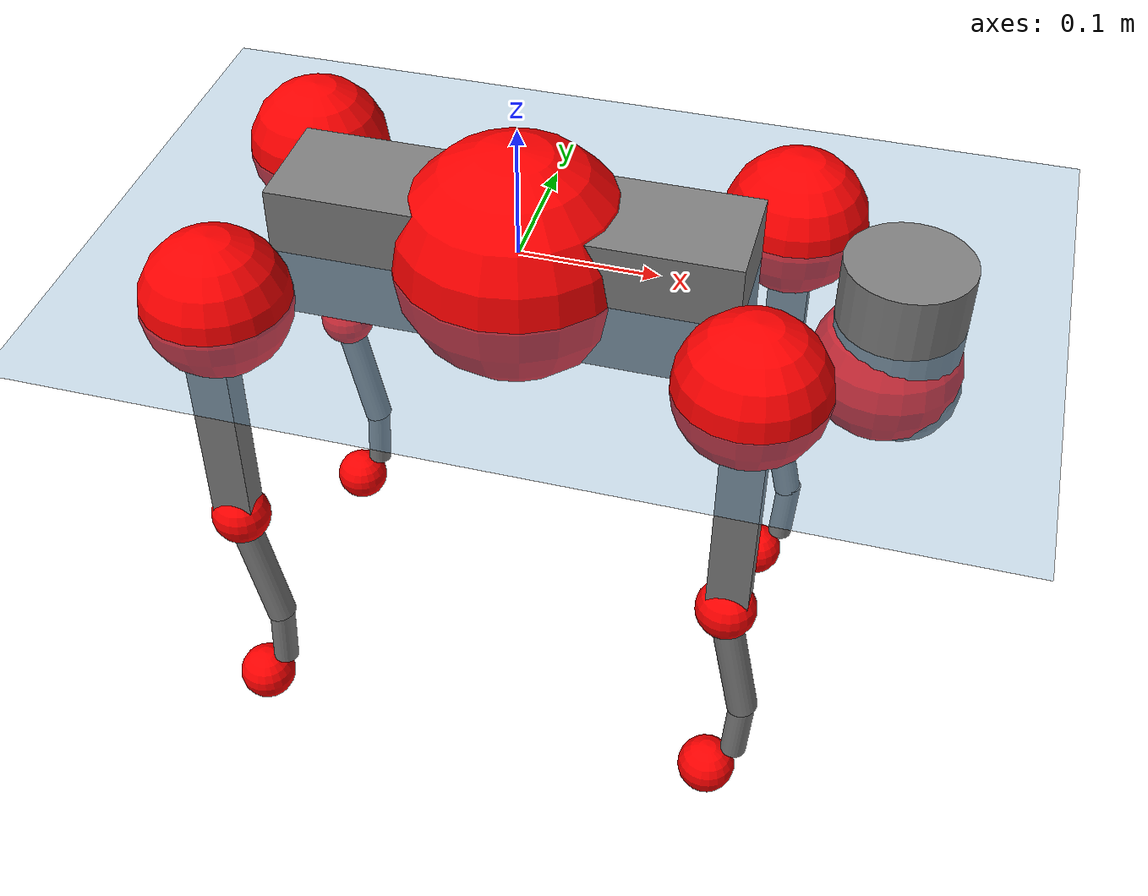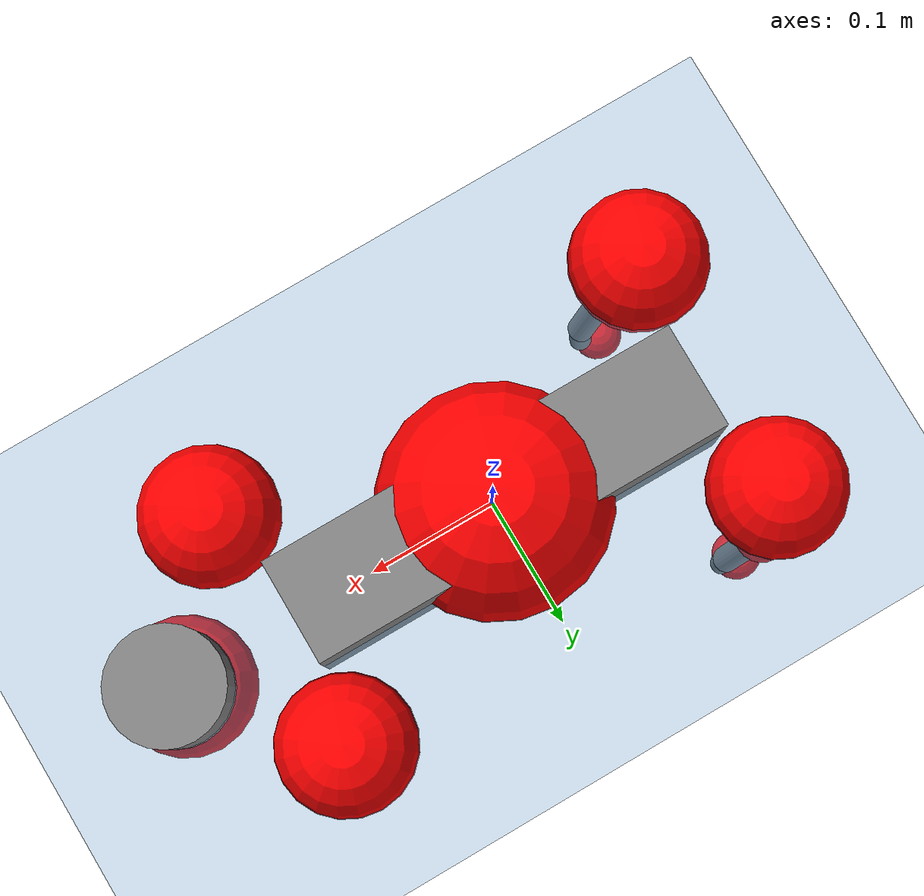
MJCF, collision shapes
<mujoco model="go2">
  <compiler angle="radian" assetdir="assets" balanceinertia="true" inertiafromgeom="false"/>

  <option timestep="0.005" density="1.2" viscosity="2e-05"/>

  <size nkey="1"/>

  <visual>
    <quality shadowsize="8192"/>
    <map shadowclip="0.5"/>
  </visual>

  <default>
    <default class="/">
      <geom contype="0" conaffinity="0" group="1" solref="-1000 -80"/>
      <site size="0.01 0.005 0.005" group="5"/>
      <general forcelimited="true" biastype="affine" gainprm="20" biasprm="0 -20 -0.5"/>
      <default class="go2">
        <joint armature="0.01" damping="0.01" frictionloss="0.2"/>
        <geom condim="1" margin="0.001"/>
        <default class="visual">
          <geom type="mesh" group="2"/>
        </default>
        <default class="collision">
          <geom group="3"/>
          <default class="foot">
            <geom size="0.022 0 0" condim="6" priority="1" friction="0.8 0.02 0.01" solimp="0.015 1 0.022"/>
          </default>
        </default>
        <default class="reward_collision_sphere">
          <geom group="5" rgba="1 0 0 1"/>
        </default>
      </default>
    </default>
  </default>

  <asset>
    <texture type="skybox" colorspace="auto" name="//unnamed_texture_0" builtin="gradient" rgb1="0.95 0.95 0.95" rgb2="0.95 0.95 0.95" width="100" height="600"/>
    <texture type="2d" colorspace="auto" name="texplane" builtin="checker" rgb1="0.345 0.575 0.748" rgb2="0.345 0.575 0.748" markrgb="1 1 1" width="512" height="512"/>
    <material name="MatPlane" class="/" texture="texplane" texuniform="true" texrepeat="2 2" specular="0.9"/>
    <material name="metal" class="/" rgba="0.9 0.95 0.95 1"/>
    <material name="black" class="/" rgba="0 0 0 1"/>
    <material name="white" class="/"/>
    <material name="gray" class="/" rgba="0.671705 0.692426 0.77427 1"/>
    <mesh name="base_0" class="/" file="base_0.obj"/>
    <mesh name="base_1" class="/" file="base_1.obj"/>
    <mesh name="base_2" class="/" file="base_2.obj"/>
    <mesh name="base_3" class="/" file="base_3.obj"/>
    <mesh name="base_4" class="/" file="base_4.obj"/>
    <mesh name="hip_0" class="/" file="hip_0.obj"/>
    <mesh name="hip_1" class="/" file="hip_1.obj"/>
    <mesh name="thigh_0" class="/" file="thigh_0.obj"/>
    <mesh name="thigh_1" class="/" file="thigh_1.obj"/>
    <mesh name="thigh_mirror_0" class="/" file="thigh_mirror_0.obj"/>
    <mesh name="thigh_mirror_1" class="/" file="thigh_mirror_1.obj"/>
    <mesh name="calf_0" class="/" file="calf_0.obj"/>
    <mesh name="calf_1" class="/" file="calf_1.obj"/>
    <mesh name="calf_mirror_0" class="/" file="calf_mirror_0.obj"/>
    <mesh name="calf_mirror_1" class="/" file="calf_mirror_1.obj"/>
    <mesh name="foot" class="/" file="foot.obj"/>
  </asset>

  <worldbody>
    <geom name="floor" class="/" size="100 100 0.125" type="plane" group="0" material="MatPlane"/>
    <light name="toplight_shadow" class="/" pos="0 0 5" dir="0.0990148 0.0990148 -0.990148" type="directional" ambient="0.04 0.04 0.04" diffuse="0.55 0.55 0.55" specular="0.12 0.12 0.12"/>
    <light name="toplight_fill" class="/" pos="0 0 5" dir="0.0990148 0.0990148 -0.990148" type="directional" castshadow="false" ambient="0.04 0.04 0.04" diffuse="0.3 0.3 0.3" specular="0.08 0.08 0.08"/>
    <body name="trunk" childclass="go2" pos="-0.00269546 -0.000466412 -0.00271093" quat="0.999999 0.000353576 0.000463348 -0.0012881">
      <inertial pos="0.0169463 0.00234937 -0.00586217" quat="-0.00901589 0.71866 0.000338254 0.695303" mass="4.85313" diaginertia="0.0801363 0.0419363 0.0126927"/>
      <joint name="//unnamed_joint_0" type="free" armature="0" damping="0" frictionloss="0"/>
      <geom name="//unnamed_geom_1" class="visual" material="black" mesh="base_0"/>
      <geom name="//unnamed_geom_2" class="visual" material="black" mesh="base_1"/>
      <geom name="//unnamed_geom_3" class="visual" material="black" mesh="base_2"/>
      <geom name="//unnamed_geom_4" class="visual" material="white" mesh="base_3"/>
      <geom name="//unnamed_geom_5" class="visual" material="gray" mesh="base_4"/>
      <geom name="trunk_1" class="collision" size="0.166798 0.0414556 0.0505448" type="box"/>
      <geom name="trunk_2" class="collision" size="0.0443375 0.0399038" pos="0.268111 0 0.00875354" type="cylinder"/>
      <geom name="trunk_3" class="collision" size="0.0416773" pos="0.275637 0 -0.0525212"/>
      <geom name="//unnamed_geom_9" class="reward_collision_sphere" size="0.088675"/>
      <geom name="//unnamed_geom_10" class="reward_collision_sphere" size="0.053205" pos="0.263407 0 -0.0393909"/>
      <site name="imu" pos="-0.0100261 -0.00134953 0.027099" size="0.0088675"/>
      <camera name="track" pos="0 -1.68832 0" quat="0.707107 0.707107 0 0" mode="trackcom"/>
      <camera name="ego_camera" pos="0.293511 0 0.0393909" quat="-0.5 -0.5 0.5 0.5"/>
      <body name="FL_hip" pos="0.181585 0.0392045 -0.00228497" quat="1 0.000163485 -0.000405499 -0.000109128">
        <inertial pos="-0.00781782 0.000815823 -0.00118505" quat="0.489489 0.507589 0.509832 0.492773" mass="0.479694" diaginertia="0.000663533 0.000261437 0.000259365"/>
        <joint name="FL_hip_joint" pos="0 0 0" axis="0.999955 -0.00857255 0.00411113" stiffness="0.00301406" range="-1.01796 1.0383" armature="0.0100704" damping="0.00749674" frictionloss="0.180515"/>
        <geom name="//unnamed_geom_11" class="visual" material="metal" mesh="hip_0"/>
        <geom name="//unnamed_geom_12" class="visual" material="gray" mesh="hip_1"/>
        <geom name="//unnamed_geom_13" class="collision" size="0.0407905 0.017735" pos="0 0.0675326 0" quat="0.707107 0.707107 0 0" type="cylinder"/>
        <geom name="//unnamed_geom_14" class="reward_collision_sphere" size="0.053205" pos="0 0.059091 0"/>
        <body name="FL_thigh" pos="-8.42391e-05 0.0801429 -0.00165443" quat="1 -9.26925e-05 -0.000190521 -0.000103528">
          <inertial pos="-0.00364743 -0.0200629 -0.0288745" quat="0.833209 0.0844688 -0.0187378 0.546147" mass="0.79401" diaginertia="0.0043259 0.00238765 0.000447179"/>
          <joint name="FL_thigh_joint" pos="0 0 0" axis="0.015995 0.999862 -0.00443109" stiffness="0.0141142" range="-1.56167 3.49903" armature="0.00770723" damping="0.00856621" frictionloss="0.176793"/>
          <geom name="//unnamed_geom_15" class="visual" material="metal" mesh="thigh_0"/>
          <geom name="//unnamed_geom_16" class="visual" material="gray" mesh="thigh_1"/>
          <geom name="//unnamed_geom_17" class="collision" size="0.0944389 0.0108627 0.0150748" pos="0 0 -0.0932252" quat="0.707107 0 0.707107 0" type="box"/>
          <body name="FL_calf" pos="0.000352895 0.000897395 -0.183986" quat="1 -7.93986e-05 5.25543e-05 -2.76263e-05">
            <inertial pos="0.00440357 -0.00321542 -0.120899" quat="0.709753 0.00117815 -0.00469454 0.704434" mass="0.170831" diaginertia="0.00113186 0.000620177 2.72919e-05"/>
            <joint name="FL_calf_joint" pos="0 0 0" axis="-0.0115165 0.999933 -0.000958422" stiffness="0.00556384" range="-2.66889 -0.874724" armature="0.00884827" damping="0.00698561" frictionloss="0.183618"/>
            <geom name="//unnamed_geom_18" class="visual" material="gray" mesh="calf_0"/>
            <geom name="//unnamed_geom_19" class="visual" material="black" mesh="calf_1"/>
            <geom name="FL_calf0" class="collision" size="0.010641 0.053205" pos="0.00752591 0 -0.0525212" quat="0.994493 0 -0.104807 0" type="cylinder"/>
            <geom name="//unnamed_geom_21" class="collision" size="0.00975425 0.0288194" pos="0.0188148 0 -0.129552" quat="0.999688 0 0.0249974 0" type="cylinder"/>
            <geom name="//unnamed_geom_22" class="visual" pos="0 0 -0.18645" quat="1 0 0 0" material="black" mesh="foot"/>
            <geom name="FL_foot" class="foot" size="0.0194929" pos="-0.00188148 0 -0.18645"/>
            <geom name="//unnamed_geom_24" class="reward_collision_sphere" size="0.0221688"/>
            <geom name="//unnamed_geom_25" class="reward_collision_sphere" size="0.0221688" pos="-0.00188148 0 -0.18645"/>
            <site name="FL_foot" class="foot" pos="-0.00188148 0 -0.18645" size="0.0088675"/>
          </body>
        </body>
      </body>
      <body name="FR_hip" pos="0.184909 -0.0362502 0.00129313" quat="1 0.000456282 0.000146909 -6.68831e-05">
        <inertial pos="-0.00601716 -0.00428192 -0.00126519" quat="0.495709 0.504261 0.49694 0.503034" mass="0.477184" diaginertia="0.000637938 0.000266724 0.000250396"/>
        <joint name="FR_hip_joint" pos="0 0 0" axis="0.999998 -0.00185911 0.00036372" range="-0.995403 1.02763" armature="0.00892536" damping="0.0169088" frictionloss="0.193332"/>
        <geom name="//unnamed_geom_26" class="visual" pos="0 -2.71767e-10 -1.16566e-08" quat="4.63268e-05 1 0 0" material="metal" mesh="hip_0"/>
        <geom name="//unnamed_geom_27" class="visual" pos="0 -4.40567e-10 2.88314e-08" quat="4.63268e-05 1 0 0" material="gray" mesh="hip_1"/>
        <geom name="//unnamed_geom_28" class="collision" size="0.0407905 0.017735" pos="0 -0.0675326 0" quat="0.707107 0.707107 0 0" type="cylinder"/>
        <geom name="//unnamed_geom_29" class="reward_collision_sphere" size="0.053205" pos="0 -0.059091 0"/>
        <body name="FR_thigh" pos="0.00280094 -0.080529 -0.00171274" quat="1 0.000308962 0.000752804 0.000164412">
          <inertial pos="-0.00330859 0.0189265 -0.0296561" quat="0.551354 -0.0202609 0.0850063 0.829682" mass="0.83132" diaginertia="0.00429704 0.00254689 0.000459483"/>
          <joint name="FR_thigh_joint" pos="0 0 0" axis="5.14456e-05 -0.99999 -0.0043665" range="-3.51459 1.61855" armature="0.00791533" damping="0.00968568" frictionloss="0.18299"/>
          <geom name="//unnamed_geom_30" class="visual" material="metal" mesh="thigh_mirror_0"/>
          <geom name="//unnamed_geom_31" class="visual" material="gray" mesh="thigh_mirror_1"/>
          <geom name="//unnamed_geom_32" class="collision" size="0.0944389 0.0108627 0.0150748" pos="0 0 -0.0932252" quat="0.707107 0 0.707107 0" type="box"/>
          <body name="FR_calf" pos="-0.000990927 -0.00163378 -0.185327" quat="1 -7.26217e-05 -9.39587e-05 1.24378e-05">
            <inertial pos="0.00622679 0.000500238 -0.12376" quat="0.706051 0.00368888 -0.00913481 0.708092" mass="0.162988" diaginertia="0.00112936 0.000630193 2.67511e-05"/>
            <joint name="FR_calf_joint" pos="0 0 0" axis="-0.00398715 -0.99994 0.0102362" range="0.834301 2.66471" armature="0.0100618" damping="0.0151444" frictionloss="0.176425"/>
            <geom name="//unnamed_geom_33" class="visual" material="gray" mesh="calf_mirror_0"/>
            <geom name="//unnamed_geom_34" class="visual" material="black" mesh="calf_mirror_1"/>
            <geom name="FR_calf0" class="collision" size="0.0115278 0.053205" pos="0.00940739 0 -0.0525212" quat="0.995004 0 -0.0998334 0" type="cylinder"/>
            <geom name="//unnamed_geom_36" class="collision" size="0.00975425 0.0288194" pos="0.0188148 0 -0.129552" quat="0.999688 0 0.0249974 0" type="cylinder"/>
            <geom name="//unnamed_geom_37" class="visual" pos="0 0 -0.18645" quat="1 0 0 0" material="black" mesh="foot"/>
            <geom name="FR_foot" class="foot" size="0.0190435" pos="-0.00188148 0 -0.18645"/>
            <geom name="//unnamed_geom_39" class="reward_collision_sphere" size="0.0221688"/>
            <geom name="//unnamed_geom_40" class="reward_collision_sphere" size="0.0221688" pos="-0.00188148 0 -0.18645"/>
            <site name="FR_foot" class="foot" pos="-0.00188148 0 -0.18645" size="0.0088675"/>
          </body>
        </body>
      </body>
      <body name="RL_hip" pos="-0.182326 0.0360856 -0.00012473" quat="1 -4.25678e-06 8.36778e-05 0.000232874">
        <inertial pos="0.00519873 0.00279569 -0.000600531" quat="0.506542 0.499499 0.494617 0.499269" mass="0.486291" diaginertia="0.000673394 0.000248822 0.00024572"/>
        <joint name="RL_hip_joint" pos="0 0 0" axis="-0.999991 0.000773145 0.00405694" stiffness="0.00477618" range="-1.03549 1.08015" armature="0.00900293" damping="0" frictionloss="0.191859"/>
        <geom name="//unnamed_geom_41" class="visual" pos="-5.69611e-10 0 -1.11657e-07" quat="4.63268e-05 0 1 0" material="metal" mesh="hip_0"/>
        <geom name="//unnamed_geom_42" class="visual" pos="-9.23407e-10 0 -9.90237e-08" quat="4.63268e-05 0 1 0" material="gray" mesh="hip_1"/>
        <geom name="//unnamed_geom_43" class="collision" size="0.0407905 0.017735" pos="0 0.0675326 0" quat="0.707107 0.707107 0 0" type="cylinder"/>
        <geom name="//unnamed_geom_44" class="reward_collision_sphere" size="0.053205" pos="0 0.059091 0"/>
        <body name="RL_thigh" pos="-0.000909113 0.0785628 0.00198757" quat="1 4.94346e-05 -2.72428e-05 3.67036e-06">
          <inertial pos="-0.00535636 -0.0192697 -0.0289979" quat="0.82786 0.088397 -0.0274236 0.553247" mass="0.826438" diaginertia="0.00444362 0.00255821 0.000455994"/>
          <joint name="RL_thigh_joint" pos="0 0 0" axis="-0.0106884 0.999918 -0.00711571" range="-0.555456 4.52882" armature="0.00972906" damping="0" frictionloss="0.177681"/>
          <geom name="//unnamed_geom_45" class="visual" material="metal" mesh="thigh_0"/>
          <geom name="//unnamed_geom_46" class="visual" material="gray" mesh="thigh_1"/>
          <geom name="//unnamed_geom_47" class="collision" size="0.0944389 0.0108627 0.0150748" pos="0 0 -0.0932252" quat="0.707107 0 0.707107 0" type="box"/>
          <body name="RL_calf" pos="-0.00229178 0.00152925 -0.189501" quat="1 -0.000475274 -1.63246e-05 0.00017351">
            <inertial pos="0.00858843 -0.00339509 -0.121034" quat="0.717633 0.00235022 -0.0106565 0.696335" mass="0.163901" diaginertia="0.00109961 0.000649317 2.68454e-05"/>
            <joint name="RL_calf_joint" pos="0 0 0" axis="-0.00333748 0.999991 0.00255249" stiffness="0.000531111" range="-2.6915 -0.835698" armature="0.00863874" damping="0.00202939" frictionloss="0.202464"/>
            <geom name="//unnamed_geom_48" class="visual" material="gray" mesh="calf_0"/>
            <geom name="//unnamed_geom_49" class="visual" material="black" mesh="calf_1"/>
            <geom name="RL_calf0" class="collision" size="0.0115278 0.053205" pos="0.00940739 0 -0.0525212" quat="0.995004 0 -0.0998334 0" type="cylinder"/>
            <geom name="//unnamed_geom_51" class="collision" size="0.00975425 0.0288194" pos="0.0188148 0 -0.129552" quat="0.999688 0 0.0249974 0" type="cylinder"/>
            <geom name="//unnamed_geom_52" class="visual" pos="0 0 -0.18645" quat="1 0 0 0" material="black" mesh="foot"/>
            <geom name="RL_foot" class="foot" size="0.0199694" pos="-0.00188148 0 -0.18645"/>
            <geom name="//unnamed_geom_54" class="reward_collision_sphere" size="0.0221688"/>
            <geom name="//unnamed_geom_55" class="reward_collision_sphere" size="0.0221688" pos="-0.00188148 0 -0.18645"/>
            <site name="RL_foot" class="foot" pos="-0.00188148 0 -0.18645" size="0.0088675"/>
          </body>
        </body>
      </body>
      <body name="RR_hip" pos="-0.181995 -0.0414798 -0.00134163" quat="0.999999 8.63247e-05 0.000513523 0.00119521">
        <inertial pos="0.00455913 0.000358828 -0.00293437" quat="0.498862 0.496889 0.498537 0.505667" mass="0.483207" diaginertia="0.000646821 0.000252722 0.000243643"/>
        <joint name="RR_hip_joint" pos="0 0 0" axis="-0.999929 0.0116839 -0.00242074" stiffness="0.00177426" range="-1.00314 1.00133" armature="0.00769504" damping="0.00427877" frictionloss="0.194671"/>
        <geom name="//unnamed_geom_56" class="visual" pos="5.66267e-10 -2.71767e-10 -1e-07" quat="2.14617e-09 4.63268e-05 4.63268e-05 -1" material="metal" mesh="hip_0"/>
        <geom name="//unnamed_geom_57" class="visual" pos="9.31678e-10 -4.40567e-10 -1.27855e-07" quat="2.14617e-09 4.63268e-05 4.63268e-05 -1" material="gray" mesh="hip_1"/>
        <geom name="//unnamed_geom_58" class="collision" size="0.0407905 0.017735" pos="0 -0.0675326 0" quat="0.707107 0.707107 0 0" type="cylinder"/>
        <geom name="//unnamed_geom_59" class="reward_collision_sphere" size="0.053205" pos="0 -0.059091 0"/>
        <body name="RR_thigh" pos="0.000258875 -0.080457 0.000763856" quat="1 -0.00014477 -0.000288365 3.13866e-05">
          <inertial pos="-0.00617359 0.0216394 -0.0286543" quat="0.551304 -0.020127 0.0850077 0.829719" mass="0.758589" diaginertia="0.00439661 0.00246247 0.000451675"/>
          <joint name="RR_thigh_joint" pos="0 0 0" axis="-0.000128965 -0.999999 -0.00147801" stiffness="0.00876995" range="-4.56158 0.557007" armature="0.00871464" damping="0.016604" frictionloss="0.157809"/>
          <geom name="//unnamed_geom_60" class="visual" material="metal" mesh="thigh_mirror_0"/>
          <geom name="//unnamed_geom_61" class="visual" material="gray" mesh="thigh_mirror_1"/>
          <geom name="//unnamed_geom_62" class="collision" size="0.0944389 0.0108627 0.0150748" pos="0 0 -0.0932252" quat="0.707107 0 0.707107 0" type="box"/>
          <body name="RR_calf" pos="0.0011456 0.000202325 -0.187372" quat="1 0.000121779 -9.58385e-05 9.43066e-05">
            <inertial pos="0.00766793 0.000562348 -0.12428" quat="0.704607 -0.00391497 0.00202139 0.709584" mass="0.157204" diaginertia="0.00105367 0.000613088 2.60193e-05"/>
            <joint name="RR_calf_joint" pos="0 0 0" axis="-0.00237811 -0.999993 0.00290374" range="0.849129 2.7804" armature="0.00785183" damping="0.014273" frictionloss="0.179511"/>
            <geom name="//unnamed_geom_63" class="visual" material="gray" mesh="calf_mirror_0"/>
            <geom name="//unnamed_geom_64" class="visual" material="black" mesh="calf_mirror_1"/>
            <geom name="RR_calf0" class="collision" size="0.0115278 0.053205" pos="0.00940739 0 -0.0525212" quat="0.995004 0 -0.0998334 0" type="cylinder"/>
            <geom name="//unnamed_geom_66" class="collision" size="0.00975425 0.0288194" pos="0.0188148 0 -0.129552" quat="0.999688 0 0.0249974 0" type="cylinder"/>
            <geom name="//unnamed_geom_67" class="visual" pos="0 0 -0.18645" quat="1 0 0 0" material="black" mesh="foot"/>
            <geom name="RR_foot" class="foot" size="0.0175942" pos="-0.00188148 0 -0.18645"/>
            <geom name="//unnamed_geom_69" class="reward_collision_sphere" size="0.0221688"/>
            <geom name="//unnamed_geom_70" class="reward_collision_sphere" size="0.0221688" pos="-0.00188148 0 -0.18645"/>
            <site name="RR_foot" class="foot" pos="-0.00188148 0 -0.18645" size="0.0088675"/>
          </body>
        </body>
      </body>
    </body>
  </worldbody>

  <contact>
    <pair class="/" geom1="floor" geom2="FL_foot" name="//unnamed_contact_0"/>
    <pair class="/" geom1="floor" geom2="FR_foot" name="//unnamed_contact_1"/>
    <pair class="/" geom1="floor" geom2="RL_foot" name="//unnamed_contact_2"/>
    <pair class="/" geom1="floor" geom2="RR_foot" name="//unnamed_contact_3"/>
  </contact>

  <actuator>
    <general name="FL_hip" class="/" joint="FL_hip_joint" forcerange="-20.766 20.766" gainprm="17.1696" biasprm="0 -17.1696 -0.467768"/>
    <general name="FL_thigh" class="/" joint="FL_thigh_joint" forcerange="-22.6047 22.6047" gainprm="17.1696" biasprm="0 -17.1696 -0.467768"/>
    <general name="FL_calf" class="/" joint="FL_calf_joint" forcerange="-37.9519 37.9519" gainprm="17.1696" biasprm="0 -17.1696 -0.467768"/>
    <general name="FR_hip" class="/" joint="FR_hip_joint" forcerange="-20.2522 20.2522" gainprm="17.1696" biasprm="0 -17.1696 -0.467768"/>
    <general name="FR_thigh" class="/" joint="FR_thigh_joint" forcerange="-23.1705 23.1705" gainprm="17.1696" biasprm="0 -17.1696 -0.467768"/>
    <general name="FR_calf" class="/" joint="FR_calf_joint" forcerange="-39.3251 39.3251" gainprm="17.1696" biasprm="0 -17.1696 -0.467768"/>
    <general name="RL_hip" class="/" joint="RL_hip_joint" forcerange="-21.9811 21.9811" gainprm="17.1696" biasprm="0 -17.1696 -0.467768"/>
    <general name="RL_thigh" class="/" joint="RL_thigh_joint" forcerange="-23.1477 23.1477" gainprm="17.1696" biasprm="0 -17.1696 -0.467768"/>
    <general name="RL_calf" class="/" joint="RL_calf_joint" forcerange="-38.727 38.727" gainprm="17.1696" biasprm="0 -17.1696 -0.467768"/>
    <general name="RR_hip" class="/" joint="RR_hip_joint" forcerange="-21.7102 21.7102" gainprm="17.1696" biasprm="0 -17.1696 -0.467768"/>
    <general name="RR_thigh" class="/" joint="RR_thigh_joint" forcerange="-20.6763 20.6763" gainprm="17.1696" biasprm="0 -17.1696 -0.467768"/>
    <general name="RR_calf" class="/" joint="RR_calf_joint" forcerange="-36.6552 36.6552" gainprm="17.1696" biasprm="0 -17.1696 -0.467768"/>
  </actuator>

  <sensor>
    <gyro site="imu" name="imu_angular_velocity"/>
    <velocimeter site="imu" name="imu_linear_velocity"/>
    <framelinvel objtype="site" objname="FL_foot" name="FL_foot_global_linear_velocity"/>
    <framelinvel objtype="site" objname="FR_foot" name="FR_foot_global_linear_velocity"/>
    <framelinvel objtype="site" objname="RL_foot" name="RL_foot_global_linear_velocity"/>
    <framelinvel objtype="site" objname="RR_foot" name="RR_foot_global_linear_velocity"/>
  </sensor>

  <keyframe>
    <key name="home" qpos="0 0 0.325 1 0 0 0 0.1 0.8 -1.5 -0.1 -0.8 1.5 -0.1 0.8 -1.5 0.1 -0.8 1.5"/>
  </keyframe>
</mujoco>
